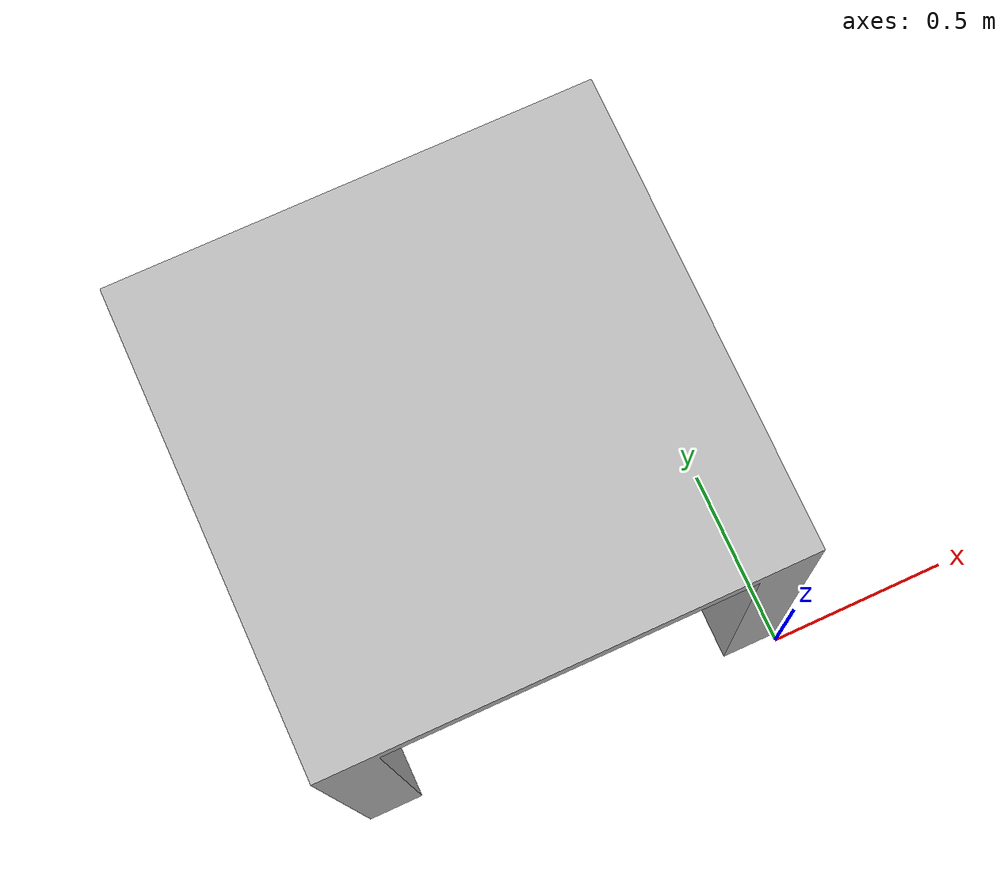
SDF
<?xml version='1.0'?>
<sdf version='1.6'>
  <model name='terrain-highplate_120'>
    <static>true</static>
    <link name='base_link'>
      <pose frame=''>0 0 0 0 -0 0</pose>
      <inertial>
        <pose frame=''>-0.6 0.618 0.703571 0 -0 0</pose>
        <mass>74.025</mass>
        <inertia>
          <ixx>22.834</ixx>
          <ixy>7.54171e-15</ixy>
          <ixz>1.55348e-14</ixz>
          <iyy>22.834</iyy>
          <iyz>1.20889e-14</iyz>
          <izz>30.4243</izz>
        </inertia>
      </inertial>
      <collision name='base_link_collision'>
        <pose frame=''>0 0 0 0 -0 0</pose>
        <geometry>
          <mesh>
            <scale>1 1 1.2</scale>
            <uri>model://terrain-highplate_120/meshes/base_link.STL</uri>
          </mesh>
        </geometry>
	      <surface>
          <contact>
            <collide_bitmask>65535</collide_bitmask>
            <ode/>
          </contact>
          <friction>
            <ode>
              <mu>2</mu>
              <mu2>2</mu2>
            </ode>
            <torsional>
              <ode/>
            </torsional>
          </friction>
          <bounce/>
        </surface>
      </collision>
      <visual name='base_link_visual'>
        <pose frame=''>0 0 0 0 -0 0</pose>
        <geometry>
          <mesh>
            <scale>1 1 1.2</scale>
            <uri>model://terrain-highplate_120/meshes/base_link.dae</uri>
          </mesh>
        </geometry>
      </visual>
    </link>
  </model>
</sdf>
